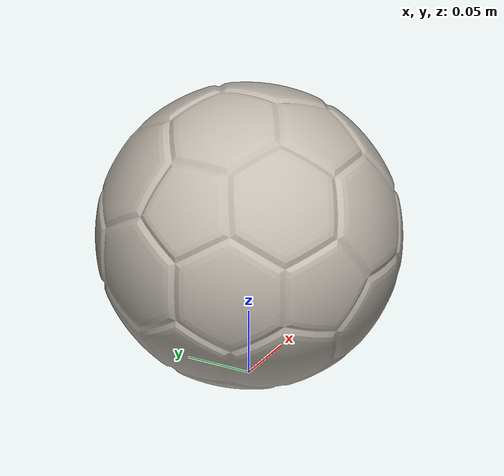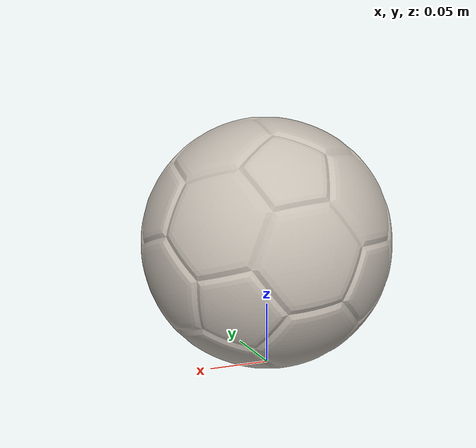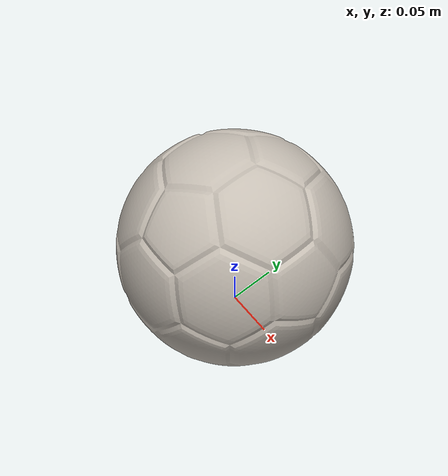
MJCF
<mujoco model="ball">
  <compiler angle="radian"/>

  <asset>
    <mesh name="ball_visual_mesh" file="visual_ball.obj" scale="0.11457 0.11457 0.11457"/>
    <texture name="ball_visual_tex" type="2d" file="texture_visual.png"/>
    <material name="ball_visual_mat"
              texture="ball_visual_tex"
              texuniform="true"
              specular="0"
              shininess="0"
              reflectance="0"/>
    <!-- Transparent collision material (no texture). -->
    <material name="ball_collision_mat" rgba="1 1 1 0" specular="0" shininess="0"/>
  </asset>

  <worldbody>
    <!-- Soccer ball as a free body -->
    <body name="ball" pos="0 0 0.11">
      <!-- Free joint = 6DOF (3 pos + 3 rot) -->
      <freejoint name="ball_free"/>

      <!-- Choose ONE of these mass approaches:
           - density="..." for mass = density * volume
           - mass="0.43"   for explicit kg (typical soccer ball ~0.43 kg) -->

      <!-- Collision sphere (primitive, transparent, no texture). -->
      <geom name="ball_collision"
            type="sphere"
            size="0.11"
            density="300"
            friction="0.8 0.005 0.0001"
            solref="0.02 1"
            solimp="0.9 0.95 0.001"
            material="ball_collision_mat"
            />

      <!-- Visual mesh (no collision, textured). -->
      <geom name="ball_visual"
            type="mesh"
            mesh="ball_visual_mesh"
            material="ball_visual_mat"
            mass="0"
            contype="0"
            conaffinity="0"
            />
    </body>
  </worldbody>
</mujoco>
